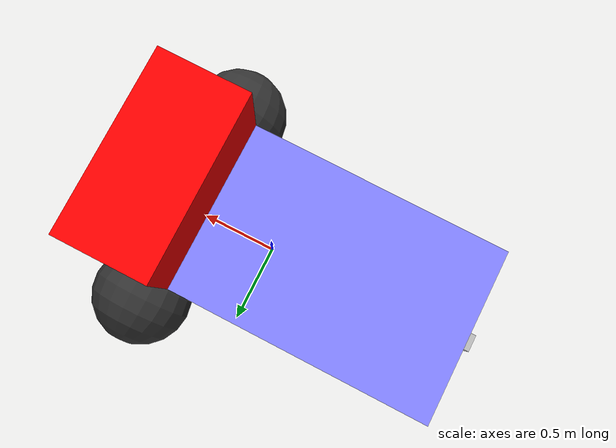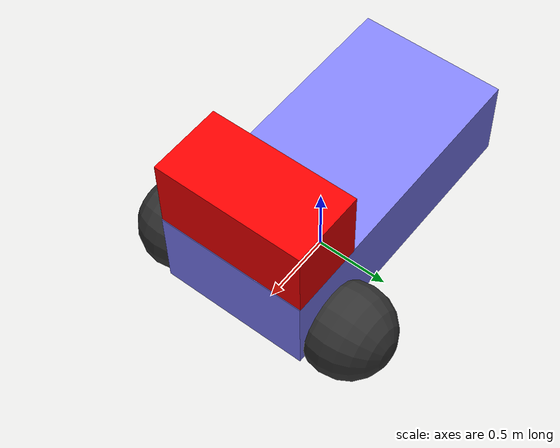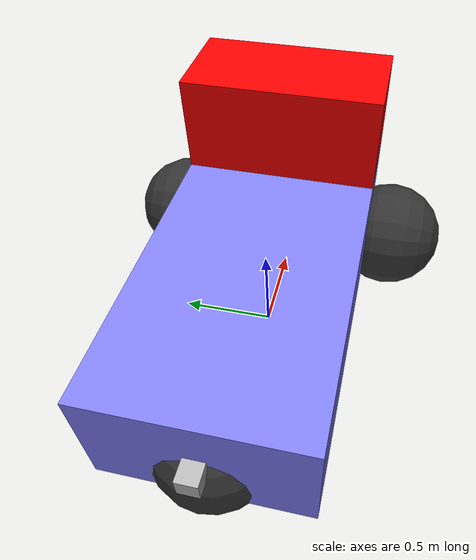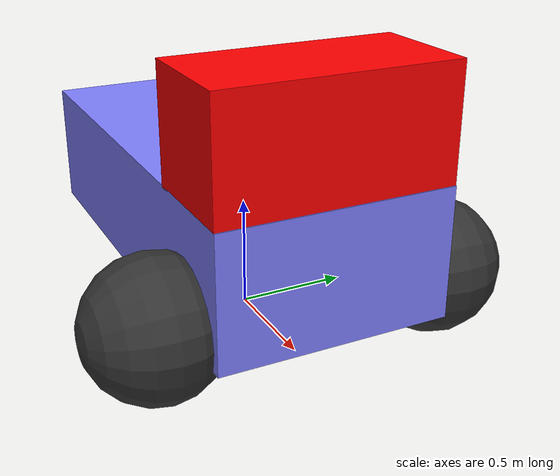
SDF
<sdf version='1.7'>
  <world name='world_custom_model'>
    <model name='robot'>
      <model name='base'>
        <pose>0 0 0.325 0 -0 0</pose>
        <link name='chassis'>
          <pose>-0.151427 -0 0.175 0 -0 0</pose>
          <inertial>
            <mass>1.14395</mass>
            <inertia>
              <ixx>0.126164</ixx>
              <ixy>0</ixy>
              <ixz>0</ixz>
              <iyy>0.41651899999999997</iyy>
              <iyz>0</iyz>
              <izz>0.481014</izz>
            </inertia>
          </inertial>
          <visual name='visual'>
            <geometry>
              <box>
                <size>2.01142 1 0.568726</size>
              </box>
            </geometry>
            <material>
              <ambient>0.5 0.5 1.0 1</ambient>
              <diffuse>0.5 0.5 1.0 1</diffuse>
              <specular>0.0 0.0 1.0 1</specular>
            </material>
          </visual>
          <collision name='collision'>
            <geometry>
              <box>
                <size>2.01142 1 0.568726</size>
              </box>
            </geometry>
          </collision>

          <!-- removed -->

          <!-- removed -->

          <sensor name='camera' type='camera'>
            <pose>-1.06 0 0 0 0 3.14</pose>
            <camera>
              <horizontal_fov>1.0469999999999999</horizontal_fov>
              <image>
                <width>320</width>
                <height>240</height>
              </image>
              <clip>
                <near>0.10000000000000001</near>
                <far>100</far>
              </clip>
            </camera>
            <always_on>1</always_on>
            <update_rate>30</update_rate>
            <visualize>true</visualize>
            <topic>chassis/camera</topic>
          </sensor>

          <!-- added -->
          <visual name="camera_visual">
            <pose>-1.06 0 0 0 0 3.14</pose>
            <geometry>
              <box>
                <size>0.1 0.1 0.1</size>
              </box>
            </geometry>
          </visual>
        </link>
        <model name='top_model'>
          <link name='top'>
            <pose>0.6 0 0.7 0 0 0</pose>
            <collision name='top_collision'>
              <geometry>
                <box>
                  <size>0.5 1 0.5</size>
                </box>
              </geometry>
            </collision>
            <visual name='top_visual'>
              <geometry>
                <box>
                  <size>0.5 1 0.5</size>
                </box>
              </geometry>
              <material>
                <ambient>1 0 0 1</ambient>
                <diffuse>1 0 0 1</diffuse>
                <specular>1 0 0 1</specular>
              </material>
            </visual>
          </link>
          <model name='top_camera'>
            <link name='top_camera_link'>
              <visual name='camera_visual'>
                <pose>-0.2 0 0.3 0 0 3.14</pose>
                <geometry>
                  <sphere>
                    <radius>0.05</radius>
                  </sphere>
                </geometry>
                <!-- replaced with above -->
                <material>
                  <ambient>0 0 1 1</ambient>
                  <diffuse>0 0 1 1</diffuse>
                  <!-- modified with above -->
                  <specular>0.5 0.5 0.5 1</specular>
                </material>
              </visual>
              <sensor name='camera' type='camera'>
                <pose>0 0 0 0 0 3.14</pose>
                <!-- modified with above -->
                <camera>
                  <horizontal_fov>1.0469999999999999</horizontal_fov>
                  <image>
                    <width>320</width>
                    <height>240</height>
                  </image>
                  <clip>
                    <near>0.10000000000000001</near>
                    <far>100</far>
                  </clip>
                </camera>
                <always_on>1</always_on>
                <update_rate>60</update_rate>
                <!-- modified with above -->
                <visualize>true</visualize>
                <topic>top/camera</topic>
              </sensor>

              <!-- added -->
              <collision name='camera_collision'>
                <pose>-0.2 0 0.3 0 0 3.14</pose>
                <geometry>
                  <sphere>
                    <radius>0.050000000000000003</radius>
                  </sphere>
                </geometry>
              </collision>
            </link>
            <pose relative_to='top'>0 0 0 0 0 0</pose>
          </model>
          <joint name='top_to_camera' type='fixed'>
            <parent>top</parent>
            <child>top_camera::top_camera_link</child>
          </joint>
        </model>
        <joint name='top_to_base' type='fixed'>
          <parent>chassis</parent>
          <child>top_model::top</child>
        </joint>
        <model name='left_wheel'>
          <link name='wheel_link'>
            <pose>0 0 0 0 0 0</pose>
            <inertial>
              <mass>2</mass>
              <inertia>
                <ixx>0.14583299999999999</ixx>
                <ixy>0</ixy>
                <ixz>0</ixz>
                <iyy>0.14583299999999999</iyy>
                <iyz>0</iyz>
                <izz>0.125</izz>
              </inertia>
            </inertial>
            <visual name='visual'>
              <geometry>
                <sphere>
                  <radius>0.29999999999999999</radius>
                </sphere>
              </geometry>
              <material>
                <ambient>0.2 0.2 0.2 1</ambient>
                <diffuse>0.2 0.2 0.2 1</diffuse>
                <specular>0.2 0.2 0.2 1</specular>
              </material>
            </visual>
            <collision name='collision'>
              <geometry>
                <sphere>
                  <radius>0.29999999999999999</radius>
                </sphere>
              </geometry>
            </collision>
          </link>
          <pose>0.554283 0.625029 -0.025 -1.5707 0 0</pose>
        </model>
        <model name='right_wheel'>
          <link name='wheel_link'>
            <pose>0 0 0 0 0 0</pose>
            <inertial>
              <mass>2</mass>
              <inertia>
                <ixx>0.14583299999999999</ixx>
                <ixy>0</ixy>
                <ixz>0</ixz>
                <iyy>0.14583299999999999</iyy>
                <iyz>0</iyz>
                <izz>0.125</izz>
              </inertia>
            </inertial>
            <visual name='visual'>
              <geometry>
                <sphere>
                  <radius>0.29999999999999999</radius>
                </sphere>
              </geometry>
              <material>
                <ambient>0.2 0.2 0.2 1</ambient>
                <diffuse>0.2 0.2 0.2 1</diffuse>
                <specular>0.2 0.2 0.2 1</specular>
              </material>
            </visual>
            <collision name='collision'>
              <geometry>
                <sphere>
                  <radius>0.29999999999999999</radius>
                </sphere>
              </geometry>
            </collision>
          </link>
          <pose>0.554282 -0.625029 -0.025 -1.5707 0 0</pose>
        </model>
        <model name='caster'>
          <link name='wheel_link'>
            <pose>0 0 0 0 0 0</pose>
            <inertial>
              <mass>2</mass>
              <inertia>
                <ixx>0.14583299999999999</ixx>
                <ixy>0</ixy>
                <ixz>0</ixz>
                <iyy>0.14583299999999999</iyy>
                <iyz>0</iyz>
                <izz>0.125</izz>
              </inertia>
            </inertial>
            <visual name='visual'>
              <geometry>
                <sphere>
                  <radius>0.29999999999999999</radius>
                </sphere>
              </geometry>
              <material>
                <ambient>0.2 0.2 0.2 1</ambient>
                <diffuse>0.2 0.2 0.2 1</diffuse>
                <specular>0.2 0.2 0.2 1</specular>
              </material>
            </visual>
            <collision name='collision'>
              <geometry>
                <sphere>
                  <radius>0.29999999999999999</radius>
                </sphere>
              </geometry>
            </collision>
          </link>
          <pose>-0.957138 -0 -0.025 0 -0 0</pose>
        </model>
        <joint name='left_wheel_joint' type='revolute'>
          <parent>chassis</parent>
          <child>left_wheel::wheel_link</child>
          <axis>
            <xyz>0 0 1</xyz>
            <limit>
              <lower>-1.7976900000000001e+308</lower>
              <upper>1.7976900000000001e+308</upper>
            </limit>
          </axis>
        </joint>
        <joint name='right_wheel_joint' type='revolute'>
          <parent>chassis</parent>
          <child>right_wheel::wheel_link</child>
          <axis>
            <xyz>0 0 1</xyz>
            <limit>
              <lower>-1.7976900000000001e+308</lower>
              <upper>1.7976900000000001e+308</upper>
            </limit>
          </axis>
        </joint>
        <joint name='caster_wheel' type='ball'>
          <parent>chassis</parent>
          <child>caster::wheel_link</child>
        </joint>
      </model>
    </model>
    <gravity>0 0 -9.8</gravity>
    <magnetic_field>5.5645e-06 2.28758e-05 -4.23884e-05</magnetic_field>
    <atmosphere type='adiabatic'/>
    <physics type='ode'>
      <max_step_size>0.001</max_step_size>
      <real_time_factor>1</real_time_factor>
      <real_time_update_rate>1000</real_time_update_rate>
    </physics>
    <scene>
      <ambient>0.4 0.4 0.4 1</ambient>
      <background>0.7 0.7 0.7 1</background>
      <shadows>true</shadows>
    </scene>
  </world>
</sdf>
